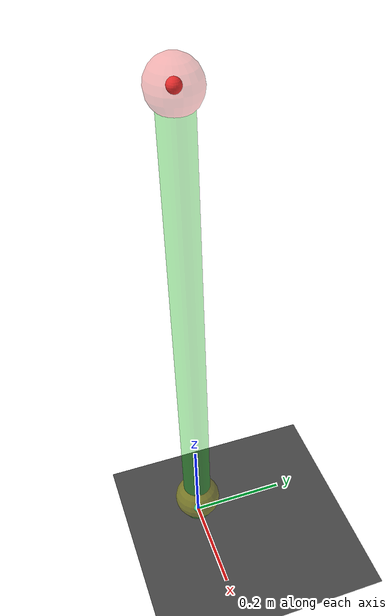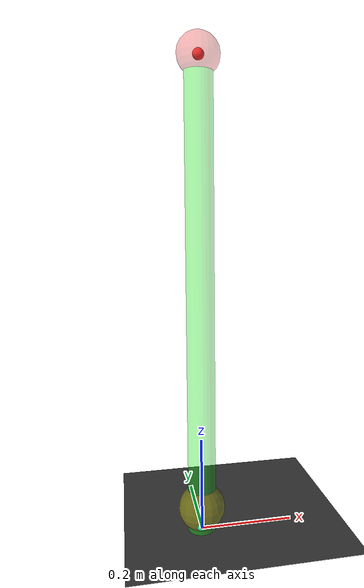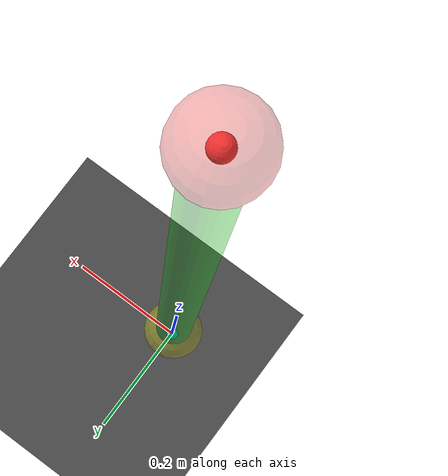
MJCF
<mujoco model="hybrid_simplest">
  <compiler angle="radian" coordinate="local"/>
  <option timestep="0.001" integrator="RK4" gravity="0 0 0">
    <flag contact="disable"/>
  </option>

  <visual>
    <headlight ambient="0.25 0.25 0.25"/>
    <rgba haze=".3 .3 .3 1"/>
  </visual>

  <asset>
    <texture type="skybox" builtin="gradient" rgb1="0.8 0.8 1" rgb2="0 0 0" width="512" height="512"/>
    <texture name="texplane" type="2d" builtin="checker"
             rgb1=".25 .25 .25" rgb2=".3 .3 .3"
             width="512" height="512" mark="cross" markrgb=".8 .8 .8"/>
    <material name="matplane" reflectance="0.3" texture="texplane" texrepeat="1 1" texuniform="true"/>
  </asset>

  <!-- Default: turn OFF contacts everywhere (not using MuJoCo contact in hybrid mode) -->
  <default>
    <geom contype="0" conaffinity="0"/>
  </default>

  <worldbody>
    <light directional="true" diffuse=".8 .8 .8" specular=".2 .2 .2" pos="0 0 5" dir="0 0 -1"/>

    <!-- purely visual ground -->

	<geom name="floor" pos="0 0 0" size="20 5 0.1" type="plane" material="matplane"/>
    <!-- Stance-foot frame: stance foot fixed at world origin -->
    <body name="stance_leg" pos="0 0 0">
      <joint name="base_x" type="slide" axis="1 0 0" limited="false"/>
        <!-- stance angle theta about +y (planar x-z motion) -->
      <joint name="theta" type="hinge" pos="0 0 0" axis="0 1 0" limited="false"/>

      <!-- stance leg, length L=1 (cylinder half-length = 0.5, centered at z=0.5) -->
      <geom name="stance_leg_geom" type="cylinder" size="0.03 0.5" pos="0 0 0.5" rgba="0 .9 0 .35"/>

      <!-- stance foot marker -->
      <geom name="stance_foot_geom" type="sphere" size="0.05" pos="0 0 0.05" rgba=".9 .9 0 0.35"/>
      <site name="stance_foot_site" pos="0 0 0" size="0.01" rgba="0 .9 .9 1"/>

      <!-- Hip at end of stance leg -->
      <body name="swing_leg" pos="0 0 1.0">
        <!-- inter-leg angle phi: flip axis so swing absolute angle becomes (theta - phi) -->
        <joint name="phi" type="hinge" pos="0 0 0" axis="0 -1 0" limited="false"/>

        <!-- hip marker -->
        <geom name="hip_geom" type="sphere" size="0.045" pos="0 0 0" rgba="0.9 0.2 0.2 0.35"/>
        <site name="hip_site" pos="0 0 0" size="0.012" rgba="1 0.2 0.2 1"/>

        <!-- swing leg goes from hip down to swing foot: length L=1 -->
        <geom name="swing_leg_geom" type="cylinder" size="0.03 0.5" pos="0 0 -0.5" rgba="0 0 .9 .35"/>
        <geom name="swing_foot_geom" type="sphere" size="0.05" pos="0 0 -.95" rgba=".9 .9 0 0.35"/>
        <site name="swing_foot_site" pos="0 0 -1.0" size="0.01" rgba="0 .9 .9 1"/>
      </body>
    </body>
  </worldbody>
</mujoco>
